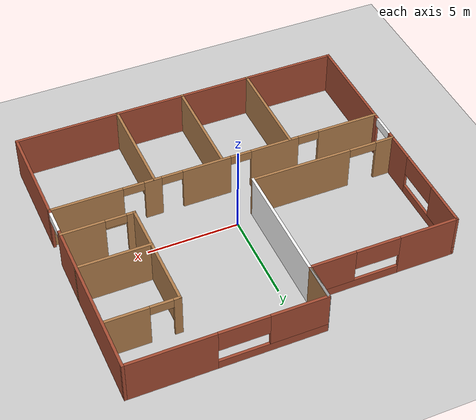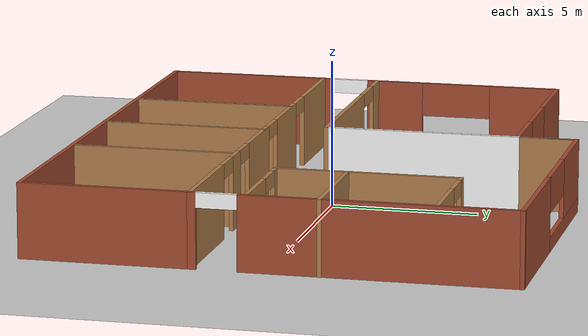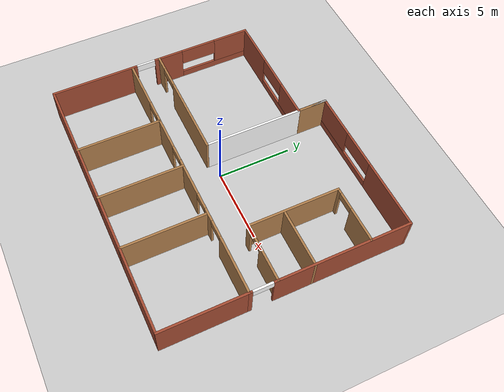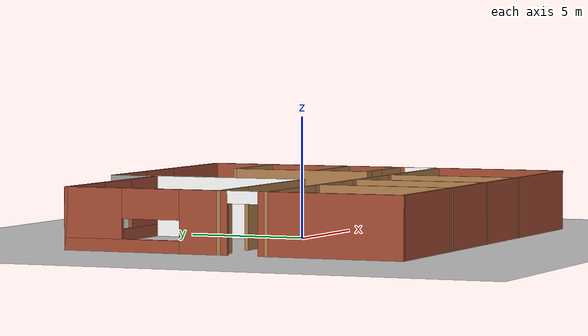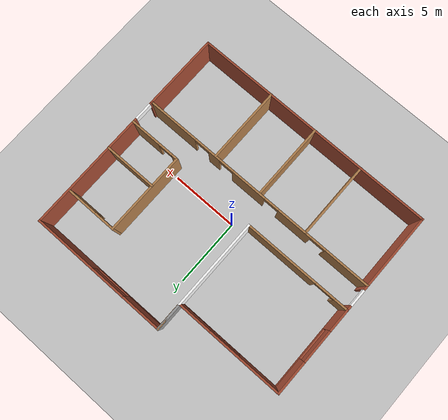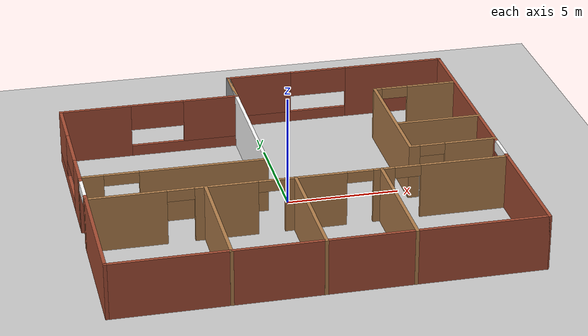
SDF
<?xml version='1.0'?>
<sdf version='1.6'>
  <model name='build'>
   <link name='link'>
        <collision name='collision'>
          <geometry>
            <plane>
              <normal>0 0 1</normal>
              <size>100 100</size>
            </plane>
          </geometry>
          <surface>
            <friction>
              <ode>
                <mu>100</mu>
                <mu2>50</mu2>
              </ode>
              <torsional>
                <ode/>
              </torsional>
            </friction>
            <contact>
              <ode/>
            </contact>
            <bounce/>
          </surface>
          <max_contacts>10</max_contacts>
        </collision>
        <visual name='visual'>
          <cast_shadows>0</cast_shadows>
          <geometry>
            <plane>
              <normal>0 0 1</normal>
              <size>100 100</size>
            </plane>
          </geometry>
          <material>
            <script>
              <uri>model://build/materials/scripts/GroundFloor.material</uri>
              <uri>model://build/materials/textures</uri>
              <name>GroundFloor/ground</name>
            </script>
          </material>
        </visual>
        <self_collide>0</self_collide>
        <enable_wind>0</enable_wind>
        <kinematic>0</kinematic>
    </link>
    <pose frame=''>0.028619 0.044211 0 0 -0 0</pose>
    <link name='Wall_0'>
      <pose frame=''>-5.12645 6.10229 0 0 -0 0</pose>
      <visual name='Wall_0_Visual_0'>
        <pose frame=''>-2.49488 0 1.25 0 -0 0</pose>
        <geometry>
          <box>
            <size>3.26024 0.15 2.5</size>
          </box>
        </geometry>
        <material>
          <script>
            <uri>file://media/materials/scripts/gazebo.material</uri>
            <name>Gazebo/Bricks</name>
          </script>
          <ambient>1 1 1 1</ambient>
        </material>
        <meta>
          <layer>0</layer>
        </meta>
      </visual>
      <collision name='Wall_0_Collision_0'>
        <geometry>
          <box>
            <size>3.26024 0.15 2.5</size>
          </box>
        </geometry>
        <pose frame=''>-2.49488 0 1.25 0 -0 0</pose>
      </collision>
      <visual name='Wall_0_Visual_1'>
        <pose frame=''>1.63012 0 0.25 0 -0 0</pose>
        <geometry>
          <box>
            <size>4.98976 0.15 0.5</size>
          </box>
        </geometry>
        <material>
          <script>
            <uri>file://media/materials/scripts/gazebo.material</uri>
            <name>Gazebo/Bricks</name>
          </script>
          <ambient>1 1 1 1</ambient>
        </material>
        <meta>
          <layer>0</layer>
        </meta>
      </visual>
      <collision name='Wall_0_Collision_1'>
        <geometry>
          <box>
            <size>4.98976 0.15 0.5</size>
          </box>
        </geometry>
        <pose frame=''>1.63012 0 0.25 0 -0 0</pose>
      </collision>
      <visual name='Wall_0_Visual_2'>
        <pose frame=''>2.83969 0 1.5 0 -0 0</pose>
        <geometry>
          <box>
            <size>2.57061 0.15 2</size>
          </box>
        </geometry>
        <material>
          <script>
            <uri>file://media/materials/scripts/gazebo.material</uri>
            <name>Gazebo/Bricks</name>
          </script>
          <ambient>1 1 1 1</ambient>
        </material>
        <meta>
          <layer>0</layer>
        </meta>
      </visual>
      <collision name='Wall_0_Collision_2'>
        <geometry>
          <box>
            <size>2.57061 0.15 2</size>
          </box>
        </geometry>
        <pose frame=''>2.83969 0 1.5 0 -0 0</pose>
      </collision>
      <visual name='Wall_0_Visual_3'>
        <pose frame=''>0.344816 0 1.9 0 -0 0</pose>
        <geometry>
          <box>
            <size>2.41914 0.15 1.2</size>
          </box>
        </geometry>
        <material>
          <script>
            <uri>file://media/materials/scripts/gazebo.material</uri>
            <name>Gazebo/Bricks</name>
          </script>
          <ambient>1 1 1 1</ambient>
        </material>
        <meta>
          <layer>0</layer>
        </meta>
      </visual>
      <collision name='Wall_0_Collision_3'>
        <geometry>
          <box>
            <size>2.41914 0.15 1.2</size>
          </box>
        </geometry>
        <pose frame=''>0.344816 0 1.9 0 -0 0</pose>
      </collision>
    </link>
    <link name='Wall_1'>
      <collision name='Wall_1_Collision'>
        <geometry>
          <box>
            <size>6.75 0.15 2.5</size>
          </box>
        </geometry>
        <pose frame=''>0 0 1.25 0 -0 0</pose>
      </collision>
      <visual name='Wall_1_Visual'>
        <pose frame=''>0 0 1.25 0 -0 0</pose>
        <geometry>
          <box>
            <size>6.75 0.15 2.5</size>
          </box>
        </geometry>
        <material>
          <script>
            <uri>model://build/materials/scripts/logo_korea.material</uri>
            <uri>model://build/materials/textures</uri>
            <name>GaitechLogoKorea/logokorea</name>
          </script>
          <ambient>1 1 1 1</ambient>
        </material>
        <meta>
          <layer>0</layer>
        </meta>
      </visual>
      <pose frame=''>-1.07645 2.80229 0 0 -0 -1.5708</pose>
    </link>
    <link name='Wall_10'>
      <pose frame=''>9.17356 2.80229 0 0 -0 1.5708</pose>
      <visual name='Wall_10_Visual_0'>
        <pose frame=''>-5.23931 0 1.25 0 -0 0</pose>
        <geometry>
          <box>
            <size>0.271377 0.15 2.5</size>
          </box>
        </geometry>
        <material>
          <script>
            <uri>file://media/materials/scripts/gazebo.material</uri>
            <name>Gazebo/Bricks</name>
          </script>
          <ambient>1 1 1 1</ambient>
        </material>
        <meta>
          <layer>0</layer>
        </meta>
      </visual>
      <collision name='Wall_10_Collision_0'>
        <geometry>
          <box>
            <size>0.271377 0.15 2.5</size>
          </box>
        </geometry>
        <pose frame=''>-5.23931 0 1.25 0 -0 0</pose>
      </collision>
      <visual name='Wall_10_Visual_1'>
        <pose frame=''>0.805429 0 1.25 0 -0 0</pose>
        <geometry>
          <box>
            <size>9.13914 0.15 2.5</size>
          </box>
        </geometry>
        <material>
          <script>
            <uri>file://media/materials/scripts/gazebo.material</uri>
            <name>Gazebo/Bricks</name>
          </script>
          <ambient>1 1 1 1</ambient>
        </material>
        <meta>
          <layer>0</layer>
        </meta>
      </visual>
      <collision name='Wall_10_Collision_1'>
        <geometry>
          <box>
            <size>9.13914 0.15 2.5</size>
          </box>
        </geometry>
        <pose frame=''>0.805429 0 1.25 0 -0 0</pose>
      </collision>
      <visual name='Wall_10_Visual_2'>
        <pose frame=''>-4.43388 0 2.25 0 -0 0</pose>
        <geometry>
          <box>
            <size>1.33948 0.15 0.5</size>
          </box>
        </geometry>
        <material>
          <script>
            <uri>model://build/materials/scripts/logo_korea.material</uri>
            <uri>model://build/materials/textures</uri>
            <name>GaitechLogoKorea/logokorea</name>
          </script>
          <ambient>1 1 1 1</ambient>
        </material>
        <meta>
          <layer>0</layer>
        </meta>
      </visual>
      <collision name='Wall_10_Collision_2'>
        <geometry>
          <box>
            <size>1.33948 0.15 0.5</size>
          </box>
        </geometry>
        <pose frame=''>-4.43388 0 2.25 0 -0 0</pose>
      </collision>
    </link>
    <link name='Wall_11'>
      <pose frame=''>4.05103 8.10229 0 0 -0 3.14159</pose>
      <visual name='Wall_11_Visual_0'>
        <pose frame=''>-2.85098 0 1.25 0 -0 0</pose>
        <geometry>
          <box>
            <size>4.6931 0.15 2.5</size>
          </box>
        </geometry>
        <material>
          <script>
            <uri>file://media/materials/scripts/gazebo.material</uri>
            <name>Gazebo/Bricks</name>
          </script>
          <ambient>1 1 1 1</ambient>
        </material>
        <meta>
          <layer>0</layer>
        </meta>
      </visual>
      <collision name='Wall_11_Collision_0'>
        <geometry>
          <box>
            <size>4.6931 0.15 2.5</size>
          </box>
        </geometry>
        <pose frame=''>-2.85098 0 1.25 0 -0 0</pose>
      </collision>
      <visual name='Wall_11_Visual_1'>
        <pose frame=''>2.34655 0 0.25 0 -0 0</pose>
        <geometry>
          <box>
            <size>5.70196 0.15 0.5</size>
          </box>
        </geometry>
        <material>
          <script>
            <uri>file://media/materials/scripts/gazebo.material</uri>
            <name>Gazebo/Bricks</name>
          </script>
          <ambient>1 1 1 1</ambient>
        </material>
        <meta>
          <layer>0</layer>
        </meta>
      </visual>
      <collision name='Wall_11_Collision_1'>
        <geometry>
          <box>
            <size>5.70196 0.15 0.5</size>
          </box>
        </geometry>
        <pose frame=''>2.34655 0 0.25 0 -0 0</pose>
      </collision>
      <visual name='Wall_11_Visual_2'>
        <pose frame=''>3.67177 0 1.5 0 -0 0</pose>
        <geometry>
          <box>
            <size>3.05151 0.15 2</size>
          </box>
        </geometry>
        <material>
          <script>
            <uri>file://media/materials/scripts/gazebo.material</uri>
            <name>Gazebo/Bricks</name>
          </script>
          <ambient>1 1 1 1</ambient>
        </material>
        <meta>
          <layer>0</layer>
        </meta>
      </visual>
      <collision name='Wall_11_Collision_2'>
        <geometry>
          <box>
            <size>3.05151 0.15 2</size>
          </box>
        </geometry>
        <pose frame=''>3.67177 0 1.5 0 -0 0</pose>
      </collision>
      <visual name='Wall_11_Visual_3'>
        <pose frame=''>0.820796 0 1.9 0 -0 0</pose>
        <geometry>
          <box>
            <size>2.65045 0.15 1.2</size>
          </box>
        </geometry>
        <material>
          <script>
            <uri>file://media/materials/scripts/gazebo.material</uri>
            <name>Gazebo/Bricks</name>
          </script>
          <ambient>1 1 1 1</ambient>
        </material>
        <meta>
          <layer>0</layer>
        </meta>
      </visual>
      <collision name='Wall_11_Collision_3'>
        <geometry>
          <box>
            <size>2.65045 0.15 1.2</size>
          </box>
        </geometry>
        <pose frame=''>0.820796 0 1.9 0 -0 0</pose>
      </collision>
    </link>
    <link name='Wall_12'>
      <collision name='Wall_12_Collision'>
        <geometry>
          <box>
            <size>2 0.15 2.5</size>
          </box>
        </geometry>
        <pose frame=''>0 0 1.25 0 -0 0</pose>
      </collision>
      <visual name='Wall_12_Visual'>
        <pose frame=''>0 0 1.25 0 -0 0</pose>
        <geometry>
          <box>
            <size>2 0.15 2.5</size>
          </box>
        </geometry>
        <material>
          <script>
            <uri>file://media/materials/scripts/gazebo.material</uri>
            <name>Gazebo/Wood</name>
          </script>
          <ambient>1 1 1 1</ambient>
        </material>
        <meta>
          <layer>0</layer>
        </meta>
      </visual>
      <pose frame=''>-1.0715 7.17729 0 0 -0 -1.5708</pose>
    </link>
    <link name='Wall_14'>
      <pose frame=''>7.24113 5.40838 0 0 -0 3.14159</pose>
      <visual name='Wall_14_Visual_0'>
        <pose frame=''>-0.802472 0 1.25 0 -0 0</pose>
        <geometry>
          <box>
            <size>2.39506 0.15 2.5</size>
          </box>
        </geometry>
        <material>
          <script>
            <uri>file://media/materials/scripts/gazebo.material</uri>
            <name>Gazebo/Wood</name>
          </script>
          <ambient>1 1 1 1</ambient>
        </material>
        <meta>
          <layer>0</layer>
        </meta>
      </visual>
      <collision name='Wall_14_Collision_0'>
        <geometry>
          <box>
            <size>2.39506 0.15 2.5</size>
          </box>
        </geometry>
        <pose frame=''>-0.802472 0 1.25 0 -0 0</pose>
      </collision>
      <visual name='Wall_14_Visual_1'>
        <pose frame=''>1.79788 0 1.25 0 -0 0</pose>
        <geometry>
          <box>
            <size>0.404246 0.15 2.5</size>
          </box>
        </geometry>
        <material>
          <script>
            <uri>file://media/materials/scripts/gazebo.material</uri>
            <name>Gazebo/Wood</name>
          </script>
          <ambient>1 1 1 1</ambient>
        </material>
        <meta>
          <layer>0</layer>
        </meta>
      </visual>
      <collision name='Wall_14_Collision_1'>
        <geometry>
          <box>
            <size>0.404246 0.15 2.5</size>
          </box>
        </geometry>
        <pose frame=''>1.79788 0 1.25 0 -0 0</pose>
      </collision>
      <visual name='Wall_14_Visual_2'>
        <pose frame=''>0.995405 0 2.25 0 -0 0</pose>
        <geometry>
          <box>
            <size>1.2007 0.15 0.5</size>
          </box>
        </geometry>
        <material>
          <script>
            <uri>file://media/materials/scripts/gazebo.material</uri>
            <name>Gazebo/Wood</name>
          </script>
          <ambient>1 1 1 1</ambient>
        </material>
        <meta>
          <layer>0</layer>
        </meta>
      </visual>
      <collision name='Wall_14_Collision_2'>
        <geometry>
          <box>
            <size>1.2007 0.15 0.5</size>
          </box>
        </geometry>
        <pose frame=''>0.995405 0 2.25 0 -0 0</pose>
      </collision>
    </link>
    <link name='Wall_15'>
      <collision name='Wall_15_Collision'>
        <geometry>
          <box>
            <size>6.25 0.15 2.5</size>
          </box>
        </geometry>
        <pose frame=''>0 0 1.25 0 -0 0</pose>
      </collision>
      <visual name='Wall_15_Visual'>
        <pose frame=''>0 0 1.25 0 -0 0</pose>
        <geometry>
          <box>
            <size>6.25 0.15 2.5</size>
          </box>
        </geometry>
        <material>
          <script>
            <uri>file://media/materials/scripts/gazebo.material</uri>
            <name>Gazebo/Wood</name>
          </script>
          <ambient>1 1 1 1</ambient>
        </material>
        <meta>
          <layer>0</layer>
        </meta>
      </visual>
      <pose frame=''>5.31613 2.35838 0 0 -0 -1.5708</pose>
    </link>
    <link name='Wall_16'>
      <pose frame=''>7.24113 -0.691625 0 0 -0 0</pose>
      <visual name='Wall_16_Visual_0'>
        <pose frame=''>-1.74864 0 1.25 0 -0 0</pose>
        <geometry>
          <box>
            <size>0.502717 0.15 2.5</size>
          </box>
        </geometry>
        <material>
          <script>
            <uri>file://media/materials/scripts/gazebo.material</uri>
            <name>Gazebo/Wood</name>
          </script>
          <ambient>1 1 1 1</ambient>
        </material>
        <meta>
          <layer>0</layer>
        </meta>
      </visual>
      <collision name='Wall_16_Collision_0'>
        <geometry>
          <box>
            <size>0.502717 0.15 2.5</size>
          </box>
        </geometry>
        <pose frame=''>-1.74864 0 1.25 0 -0 0</pose>
      </collision>
      <visual name='Wall_16_Visual_1'>
        <pose frame=''>0.817011 0 1.25 0 -0 0</pose>
        <geometry>
          <box>
            <size>2.36598 0.15 2.5</size>
          </box>
        </geometry>
        <material>
          <script>
            <uri>file://media/materials/scripts/gazebo.material</uri>
            <name>Gazebo/Wood</name>
          </script>
          <ambient>1 1 1 1</ambient>
        </material>
        <meta>
          <layer>0</layer>
        </meta>
      </visual>
      <collision name='Wall_16_Collision_1'>
        <geometry>
          <box>
            <size>2.36598 0.15 2.5</size>
          </box>
        </geometry>
        <pose frame=''>0.817011 0 1.25 0 -0 0</pose>
      </collision>
      <visual name='Wall_16_Visual_2'>
        <pose frame=''>-0.93163 0 2.25 0 -0 0</pose>
        <geometry>
          <box>
            <size>1.13131 0.15 0.5</size>
          </box>
        </geometry>
        <material>
          <script>
            <uri>file://media/materials/scripts/gazebo.material</uri>
            <name>Gazebo/Wood</name>
          </script>
          <ambient>1 1 1 1</ambient>
        </material>
        <meta>
          <layer>0</layer>
        </meta>
      </visual>
      <collision name='Wall_16_Collision_2'>
        <geometry>
          <box>
            <size>1.13131 0.15 0.5</size>
          </box>
        </geometry>
        <pose frame=''>-0.93163 0 2.25 0 -0 0</pose>
      </collision>
    </link>
    <link name='Wall_18'>
      <collision name='Wall_18_Collision'>
        <geometry>
          <box>
            <size>4 0.15 2.5</size>
          </box>
        </geometry>
        <pose frame=''>0 0 1.25 0 -0 0</pose>
      </collision>
      <visual name='Wall_18_Visual'>
        <pose frame=''>0 0 1.25 0 -0 0</pose>
        <geometry>
          <box>
            <size>4 0.15 2.5</size>
          </box>
        </geometry>
        <material>
          <script>
            <uri>file://media/materials/scripts/gazebo.material</uri>
            <name>Gazebo/Wood</name>
          </script>
          <ambient>1 1 1 1</ambient>
        </material>
        <meta>
          <layer>0</layer>
        </meta>
      </visual>
      <pose frame=''>7.25145 1.68435 0 0 -0 0</pose>
    </link>
    <link name='Wall_2'>
      <pose frame=''>-5.12645 -0.497707 0 0 -0 3.14159</pose>
      <visual name='Wall_2_Visual_0'>
        <pose frame=''>-1.3104 0 1.25 0 -0 0</pose>
        <geometry>
          <box>
            <size>5.6292 0.15 2.5</size>
          </box>
        </geometry>
        <material>
          <script>
            <uri>file://media/materials/scripts/gazebo.material</uri>
            <name>Gazebo/Wood</name>
          </script>
          <ambient>1 1 1 1</ambient>
        </material>
        <meta>
          <layer>0</layer>
        </meta>
      </visual>
      <collision name='Wall_2_Collision_0'>
        <geometry>
          <box>
            <size>5.6292 0.15 2.5</size>
          </box>
        </geometry>
        <pose frame=''>-1.3104 0 1.25 0 -0 0</pose>
      </collision>
      <visual name='Wall_2_Visual_1'>
        <pose frame=''>3.57686 0 1.25 0 -0 0</pose>
        <geometry>
          <box>
            <size>1.09628 0.15 2.5</size>
          </box>
        </geometry>
        <material>
          <script>
            <uri>file://media/materials/scripts/gazebo.material</uri>
            <name>Gazebo/Wood</name>
          </script>
          <ambient>1 1 1 1</ambient>
        </material>
        <meta>
          <layer>0</layer>
        </meta>
      </visual>
      <collision name='Wall_2_Collision_1'>
        <geometry>
          <box>
            <size>1.09628 0.15 2.5</size>
          </box>
        </geometry>
        <pose frame=''>3.57686 0 1.25 0 -0 0</pose>
      </collision>
      <visual name='Wall_2_Visual_2'>
        <pose frame=''>2.26646 0 2.25 0 -0 0</pose>
        <geometry>
          <box>
            <size>1.52453 0.15 0.5</size>
          </box>
        </geometry>
        <material>
          <script>
            <uri>file://media/materials/scripts/gazebo.material</uri>
            <name>Gazebo/Wood</name>
          </script>
          <ambient>1 1 1 1</ambient>
        </material>
        <meta>
          <layer>0</layer>
        </meta>
      </visual>
      <collision name='Wall_2_Collision_2'>
        <geometry>
          <box>
            <size>1.52453 0.15 0.5</size>
          </box>
        </geometry>
        <pose frame=''>2.26646 0 2.25 0 -0 0</pose>
      </collision>
    </link>
    <link name='Wall_21'>
      <collision name='Wall_21_Collision'>
        <geometry>
          <box>
            <size>5.75 0.15 2.5</size>
          </box>
        </geometry>
        <pose frame=''>0 0 1.25 0 -0 0</pose>
      </collision>
      <visual name='Wall_21_Visual'>
        <pose frame=''>0 0 1.25 0 -0 0</pose>
        <geometry>
          <box>
            <size>5.75 0.15 2.5</size>
          </box>
        </geometry>
        <material>
          <script>
            <uri>file://media/materials/scripts/gazebo.material</uri>
            <name>Gazebo/Wood</name>
          </script>
          <ambient>1 1 1 1</ambient>
        </material>
        <meta>
          <layer>0</layer>
        </meta>
      </visual>
      <pose frame=''>-4.11084 -5.30229 0 0 -0 -1.5708</pose>
    </link>
    <link name='Wall_23'>
      <collision name='Wall_23_Collision'>
        <geometry>
          <box>
            <size>5.75 0.15 2.5</size>
          </box>
        </geometry>
        <pose frame=''>0 0 1.25 0 -0 0</pose>
      </collision>
      <visual name='Wall_23_Visual'>
        <pose frame=''>0 0 1.25 0 -0 0</pose>
        <geometry>
          <box>
            <size>5.75 0.15 2.5</size>
          </box>
        </geometry>
        <material>
          <script>
            <uri>file://media/materials/scripts/gazebo.material</uri>
            <name>Gazebo/Wood</name>
          </script>
          <ambient>1 1 1 1</ambient>
        </material>
        <meta>
          <layer>0</layer>
        </meta>
      </visual>
      <pose frame=''>-0.2249 -5.30229 0 0 -0 -1.5708</pose>
    </link>
    <link name='Wall_27'>
      <collision name='Wall_27_Collision'>
        <geometry>
          <box>
            <size>5.75 0.15 2.5</size>
          </box>
        </geometry>
        <pose frame=''>0 0 1.25 0 -0 0</pose>
      </collision>
      <visual name='Wall_27_Visual'>
        <pose frame=''>0 0 1.25 0 -0 0</pose>
        <geometry>
          <box>
            <size>5.75 0.15 2.5</size>
          </box>
        </geometry>
        <material>
          <script>
            <uri>file://media/materials/scripts/gazebo.material</uri>
            <name>Gazebo/Wood</name>
          </script>
          <ambient>1 1 1 1</ambient>
        </material>
        <meta>
          <layer>0</layer>
        </meta>
      </visual>
      <pose frame=''>3.54539 -5.30229 0 0 -0 -1.5708</pose>
    </link>
    <link name='Wall_3'>
      <pose frame=''>-9.17644 2.80229 0 0 -0 1.5708</pose>
      <visual name='Wall_3_Visual_0'>
        <pose frame=''>-2.49273 0 1.25 0 -0 0</pose>
        <geometry>
          <box>
            <size>1.76453 0.15 2.5</size>
          </box>
        </geometry>
        <material>
          <script>
            <uri>file://media/materials/scripts/gazebo.material</uri>
            <name>Gazebo/Bricks</name>
          </script>
          <ambient>1 1 1 1</ambient>
        </material>
        <meta>
          <layer>0</layer>
        </meta>
      </visual>
      <collision name='Wall_3_Collision_0'>
        <geometry>
          <box>
            <size>1.76453 0.15 2.5</size>
          </box>
        </geometry>
        <pose frame=''>-2.49273 0 1.25 0 -0 0</pose>
      </collision>
      <visual name='Wall_3_Visual_1'>
        <pose frame=''>0.882266 0 0.25 0 -0 0</pose>
        <geometry>
          <box>
            <size>4.98547 0.15 0.5</size>
          </box>
        </geometry>
        <material>
          <script>
            <uri>file://media/materials/scripts/gazebo.material</uri>
            <name>Gazebo/Bricks</name>
          </script>
          <ambient>1 1 1 1</ambient>
        </material>
        <meta>
          <layer>0</layer>
        </meta>
      </visual>
      <collision name='Wall_3_Collision_1'>
        <geometry>
          <box>
            <size>4.98547 0.15 0.5</size>
          </box>
        </geometry>
        <pose frame=''>0.882266 0 0.25 0 -0 0</pose>
      </collision>
      <visual name='Wall_3_Visual_2'>
        <pose frame=''>2.11497 0 1.5 0 -0 0</pose>
        <geometry>
          <box>
            <size>2.52007 0.15 2</size>
          </box>
        </geometry>
        <material>
          <script>
            <uri>file://media/materials/scripts/gazebo.material</uri>
            <name>Gazebo/Bricks</name>
          </script>
          <ambient>1 1 1 1</ambient>
        </material>
        <meta>
          <layer>0</layer>
        </meta>
      </visual>
      <collision name='Wall_3_Collision_2'>
        <geometry>
          <box>
            <size>2.52007 0.15 2</size>
          </box>
        </geometry>
        <pose frame=''>2.11497 0 1.5 0 -0 0</pose>
      </collision>
      <visual name='Wall_3_Visual_3'>
        <pose frame=''>-0.377767 0 1.9 0 -0 0</pose>
        <geometry>
          <box>
            <size>2.4654 0.15 1.2</size>
          </box>
        </geometry>
        <material>
          <script>
            <uri>file://media/materials/scripts/gazebo.material</uri>
            <name>Gazebo/Bricks</name>
          </script>
          <ambient>1 1 1 1</ambient>
        </material>
        <meta>
          <layer>0</layer>
        </meta>
      </visual>
      <collision name='Wall_3_Collision_3'>
        <geometry>
          <box>
            <size>2.4654 0.15 1.2</size>
          </box>
        </geometry>
        <pose frame=''>-0.377767 0 1.9 0 -0 0</pose>
      </collision>
    </link>
    <link name='Wall_35'>
      <collision name='Wall_35_Collision'>
        <geometry>
          <box>
            <size>2 0.15 2.5</size>
          </box>
        </geometry>
        <pose frame=''>0 0 1.25 0 -0 0</pose>
      </collision>
      <visual name='Wall_35_Visual'>
        <pose frame=''>0 0 1.25 0 -0 0</pose>
        <geometry>
          <box>
            <size>2 0.15 2.5</size>
          </box>
        </geometry>
        <material>
          <script>
            <uri>file://media/materials/scripts/gazebo.material</uri>
            <name>Gazebo/Grey</name>
          </script>
          <ambient>1 1 1 1</ambient>
        </material>
        <meta>
          <layer>0</layer>
        </meta>
      </visual>
      <pose frame=''>-1.08899 7.17729 0 0 -0 -1.5708</pose>
    </link>
    <link name='Wall_5'>
      <pose frame=''>-9.17644 -4.29771 0 0 -0 -1.5708</pose>
      <visual name='Wall_5_Visual_0'>
        <pose frame=''>-3.65966 0 1.25 0 -0 0</pose>
        <geometry>
          <box>
            <size>0.430683 0.15 2.5</size>
          </box>
        </geometry>
        <material>
          <script>
            <uri>file://media/materials/scripts/gazebo.material</uri>
            <name>Gazebo/Bricks</name>
          </script>
          <ambient>1 1 1 1</ambient>
        </material>
        <meta>
          <layer>0</layer>
        </meta>
      </visual>
      <collision name='Wall_5_Collision_0'>
        <geometry>
          <box>
            <size>0.430683 0.15 2.5</size>
          </box>
        </geometry>
        <pose frame=''>-3.65966 0 1.25 0 -0 0</pose>
      </collision>
      <visual name='Wall_5_Visual_1'>
        <pose frame=''>0.861952 0 1.25 0 -0 0</pose>
        <geometry>
          <box>
            <size>6.0261 0.15 2.5</size>
          </box>
        </geometry>
        <material>
          <script>
            <uri>file://media/materials/scripts/gazebo.material</uri>
            <name>Gazebo/Bricks</name>
          </script>
          <ambient>1 1 1 1</ambient>
        </material>
        <meta>
          <layer>0</layer>
        </meta>
      </visual>
      <collision name='Wall_5_Collision_1'>
        <geometry>
          <box>
            <size>6.0261 0.15 2.5</size>
          </box>
        </geometry>
        <pose frame=''>0.861952 0 1.25 0 -0 0</pose>
      </collision>
      <visual name='Wall_5_Visual_2'>
        <pose frame=''>-2.79771 0 2.25 0 -0 0</pose>
        <geometry>
          <box>
            <size>1.29322 0.15 0.5</size>
          </box>
        </geometry>
        <material>
          <script>
            <uri>model://build/materials/scripts/logo_korea.material</uri>
            <uri>model://build/materials/textures</uri>
            <name>GaitechLogoKorea/logokorea</name>
          </script>
          <ambient>1 1 1 1</ambient>
        </material>
        <meta>
          <layer>0</layer>
        </meta>
      </visual>
      <collision name='Wall_5_Collision_2'>
        <geometry>
          <box>
            <size>1.29322 0.15 0.5</size>
          </box>
        </geometry>
        <pose frame=''>-2.79771 0 2.25 0 -0 0</pose>
      </collision>
    </link>
    <link name='Wall_6'>
      <collision name='Wall_6_Collision'>
        <geometry>
          <box>
            <size>18.5 0.15 2.5</size>
          </box>
        </geometry>
        <pose frame=''>0 0 1.25 0 -0 0</pose>
      </collision>
      <visual name='Wall_6_Visual'>
        <pose frame=''>0 0 1.25 0 -0 0</pose>
        <geometry>
          <box>
            <size>18.5 0.15 2.5</size>
          </box>
        </geometry>
        <material>
          <script>
            <uri>file://media/materials/scripts/gazebo.material</uri>
            <name>Gazebo/Bricks</name>
          </script>
          <ambient>1 1 1 1</ambient>
        </material>
        <meta>
          <layer>0</layer>
        </meta>
      </visual>
      <pose frame=''>-0.001445 -8.09771 0 0 -0 0</pose>
    </link>
    <link name='Wall_7'>
      <collision name='Wall_7_Collision'>
        <geometry>
          <box>
            <size>5.75 0.15 2.5</size>
          </box>
        </geometry>
        <pose frame=''>0 0 1.25 0 -0 0</pose>
      </collision>
      <visual name='Wall_7_Visual'>
        <pose frame=''>0 0 1.25 0 -0 0</pose>
        <geometry>
          <box>
            <size>5.75 0.15 2.5</size>
          </box>
        </geometry>
        <material>
          <script>
            <uri>file://media/materials/scripts/gazebo.material</uri>
            <name>Gazebo/Bricks</name>
          </script>
          <ambient>1 1 1 1</ambient>
        </material>
        <meta>
          <layer>0</layer>
        </meta>
      </visual>
      <pose frame=''>9.17356 -5.29771 0 0 -0 1.5708</pose>
    </link>
    <link name='Wall_8'>
      <pose frame=''>-0.001445 -2.49771 0 0 -0 3.14159</pose>
      <visual name='Wall_8_Visual_0'>
        <pose frame=''>-7.26232 0 1.25 0 -0 0</pose>
        <geometry>
          <box>
            <size>3.97537 0.15 2.5</size>
          </box>
        </geometry>
        <material>
          <script>
            <uri>file://media/materials/scripts/gazebo.material</uri>
            <name>Gazebo/Wood</name>
          </script>
          <ambient>1 1 1 1</ambient>
        </material>
        <meta>
          <layer>0</layer>
        </meta>
      </visual>
      <collision name='Wall_8_Collision_0'>
        <geometry>
          <box>
            <size>3.97537 0.15 2.5</size>
          </box>
        </geometry>
        <pose frame=''>-7.26232 0 1.25 0 -0 0</pose>
      </collision>
      <visual name='Wall_8_Visual_1'>
        <pose frame=''>-3.64497 0 1.25 0 -0 0</pose>
        <geometry>
          <box>
            <size>0.950449 0.15 2.5</size>
          </box>
        </geometry>
        <material>
          <script>
            <uri>file://media/materials/scripts/gazebo.material</uri>
            <name>Gazebo/Wood</name>
          </script>
          <ambient>1 1 1 1</ambient>
        </material>
        <meta>
          <layer>0</layer>
        </meta>
      </visual>
      <collision name='Wall_8_Collision_1'>
        <geometry>
          <box>
            <size>0.950449 0.15 2.5</size>
          </box>
        </geometry>
        <pose frame=''>-3.64497 0 1.25 0 -0 0</pose>
      </collision>
      <visual name='Wall_8_Visual_2'>
        <pose frame=''>-0.661125 0 1.25 0 -0 0</pose>
        <geometry>
          <box>
            <size>2.70838 0.15 2.5</size>
          </box>
        </geometry>
        <material>
          <script>
            <uri>file://media/materials/scripts/gazebo.material</uri>
            <name>Gazebo/Wood</name>
          </script>
          <ambient>1 1 1 1</ambient>
        </material>
        <meta>
          <layer>0</layer>
        </meta>
      </visual>
      <collision name='Wall_8_Collision_2'>
        <geometry>
          <box>
            <size>2.70838 0.15 2.5</size>
          </box>
        </geometry>
        <pose frame=''>-0.661125 0 1.25 0 -0 0</pose>
      </collision>
      <visual name='Wall_8_Visual_3'>
        <pose frame=''>3.21903 0 1.25 0 -0 0</pose>
        <geometry>
          <box>
            <size>2.74307 0.15 2.5</size>
          </box>
        </geometry>
        <material>
          <script>
            <uri>file://media/materials/scripts/gazebo.material</uri>
            <name>Gazebo/Wood</name>
          </script>
          <ambient>1 1 1 1</ambient>
        </material>
        <meta>
          <layer>0</layer>
        </meta>
      </visual>
      <collision name='Wall_8_Collision_3'>
        <geometry>
          <box>
            <size>2.74307 0.15 2.5</size>
          </box>
        </geometry>
        <pose frame=''>3.21903 0 1.25 0 -0 0</pose>
      </collision>
      <visual name='Wall_8_Visual_4'>
        <pose frame=''>7.50907 0 1.25 0 -0 0</pose>
        <geometry>
          <box>
            <size>3.48186 0.15 2.5</size>
          </box>
        </geometry>
        <material>
          <script>
            <uri>file://media/materials/scripts/gazebo.material</uri>
            <name>Gazebo/Wood</name>
          </script>
          <ambient>1 1 1 1</ambient>
        </material>
        <meta>
          <layer>0</layer>
        </meta>
      </visual>
      <collision name='Wall_8_Collision_4'>
        <geometry>
          <box>
            <size>3.48186 0.15 2.5</size>
          </box>
        </geometry>
        <pose frame=''>7.50907 0 1.25 0 -0 0</pose>
      </collision>
      <visual name='Wall_8_Visual_5'>
        <pose frame=''>-4.69742 0 2.25 0 -0 0</pose>
        <geometry>
          <box>
            <size>1.15444 0.15 0.5</size>
          </box>
        </geometry>
        <material>
          <script>
            <uri>file://media/materials/scripts/gazebo.material</uri>
            <name>Gazebo/Wood</name>
          </script>
          <ambient>1 1 1 1</ambient>
        </material>
        <meta>
          <layer>0</layer>
        </meta>
      </visual>
      <collision name='Wall_8_Collision_5'>
        <geometry>
          <box>
            <size>1.15444 0.15 0.5</size>
          </box>
        </geometry>
        <pose frame=''>-4.69742 0 2.25 0 -0 0</pose>
      </collision>
      <visual name='Wall_8_Visual_6'>
        <pose frame=''>-2.59253 0 2.25 0 -0 0</pose>
        <geometry>
          <box>
            <size>1.15444 0.15 0.5</size>
          </box>
        </geometry>
        <material>
          <script>
            <uri>file://media/materials/scripts/gazebo.material</uri>
            <name>Gazebo/Wood</name>
          </script>
          <ambient>1 1 1 1</ambient>
        </material>
        <meta>
          <layer>0</layer>
        </meta>
      </visual>
      <collision name='Wall_8_Collision_6'>
        <geometry>
          <box>
            <size>1.15444 0.15 0.5</size>
          </box>
        </geometry>
        <pose frame=''>-2.59253 0 2.25 0 -0 0</pose>
      </collision>
      <visual name='Wall_8_Visual_7'>
        <pose frame=''>1.27028 0 2.25 0 -0 0</pose>
        <geometry>
          <box>
            <size>1.15444 0.15 0.5</size>
          </box>
        </geometry>
        <material>
          <script>
            <uri>file://media/materials/scripts/gazebo.material</uri>
            <name>Gazebo/Wood</name>
          </script>
          <ambient>1 1 1 1</ambient>
        </material>
        <meta>
          <layer>0</layer>
        </meta>
      </visual>
      <collision name='Wall_8_Collision_7'>
        <geometry>
          <box>
            <size>1.15444 0.15 0.5</size>
          </box>
        </geometry>
        <pose frame=''>1.27028 0 2.25 0 -0 0</pose>
      </collision>
      <visual name='Wall_8_Visual_8'>
        <pose frame=''>5.17935 0 2.25 0 -0 0</pose>
        <geometry>
          <box>
            <size>1.17757 0.15 0.5</size>
          </box>
        </geometry>
        <material>
          <script>
            <uri>file://media/materials/scripts/gazebo.material</uri>
            <name>Gazebo/Wood</name>
          </script>
          <ambient>1 1 1 1</ambient>
        </material>
        <meta>
          <layer>0</layer>
        </meta>
      </visual>
      <collision name='Wall_8_Collision_8'>
        <geometry>
          <box>
            <size>1.17757 0.15 0.5</size>
          </box>
        </geometry>
        <pose frame=''>5.17935 0 2.25 0 -0 0</pose>
      </collision>
    </link>
    <static>1</static>
  </model>
</sdf>
